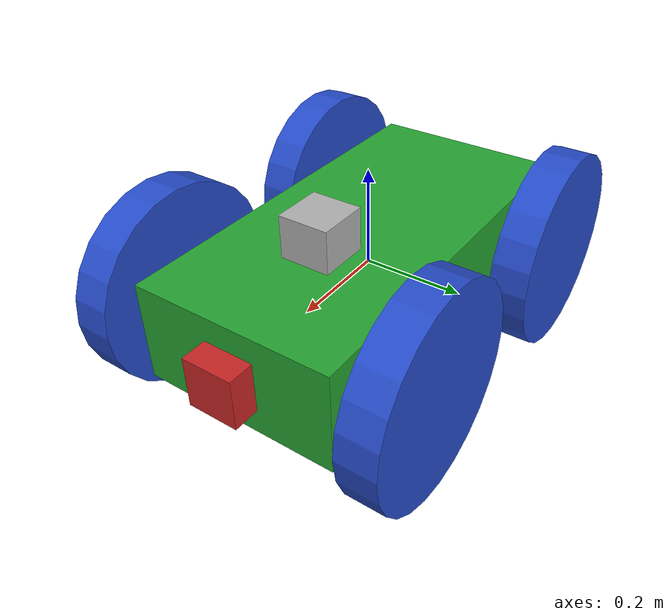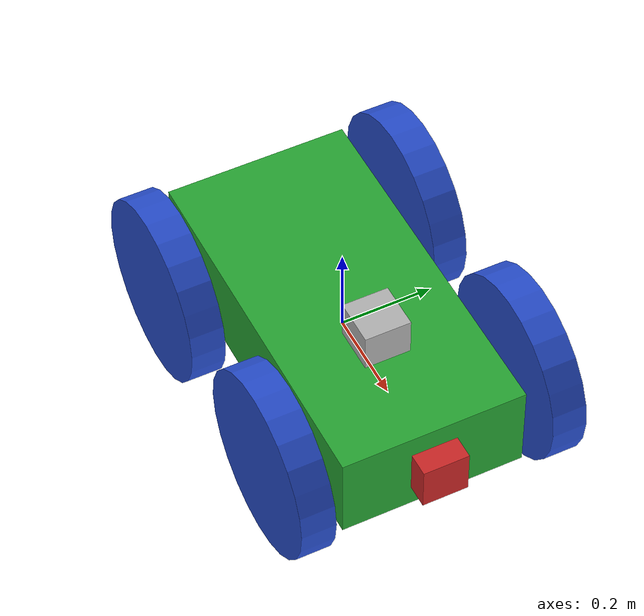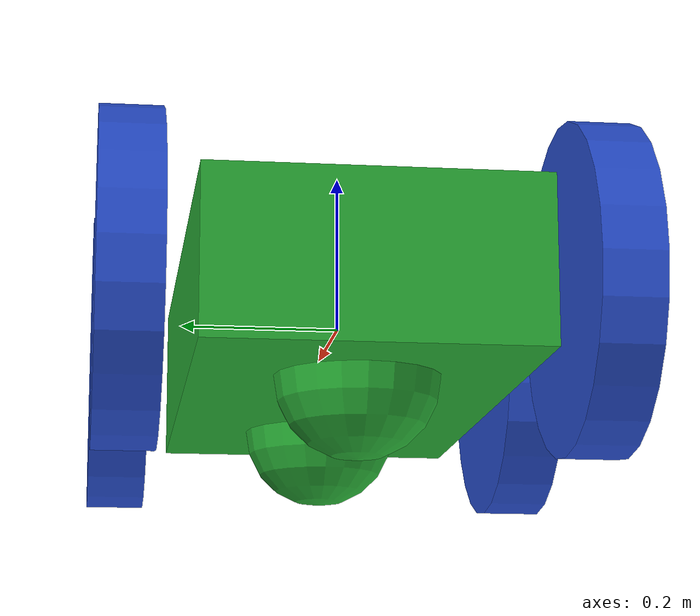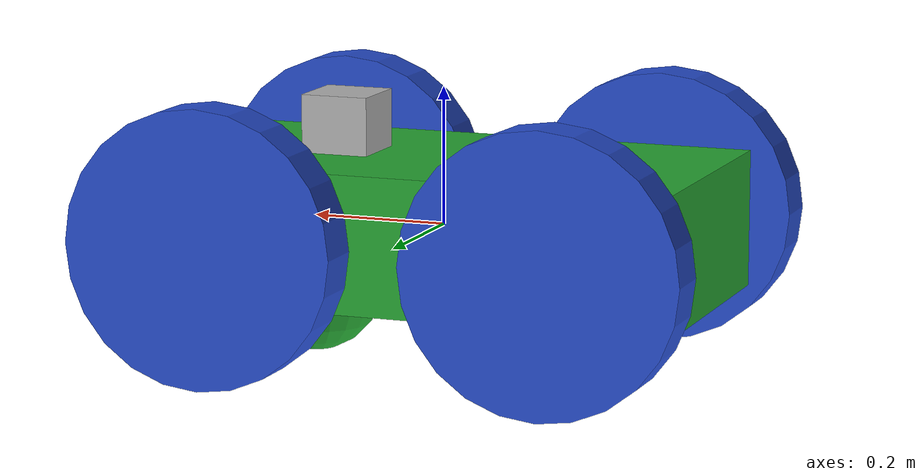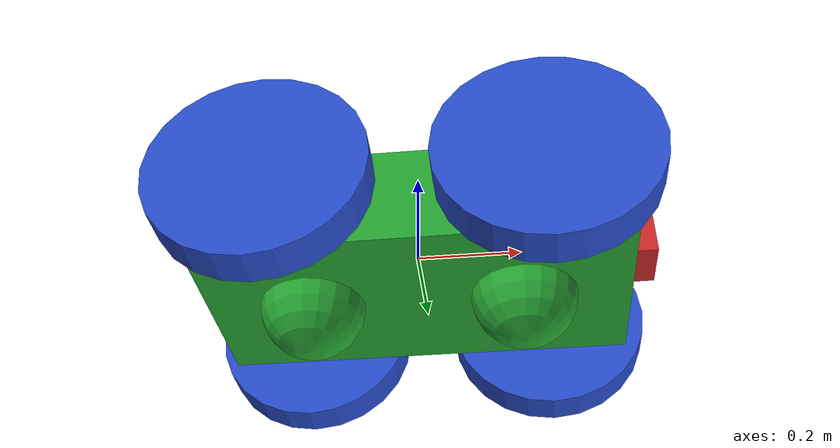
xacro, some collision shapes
<?xml version='1.0'?>

<robot name="my_robot" xmlns:xacro="http://www.ros.org/wiki/xacro">

  <xacro:include filename="$(find my_robot)/urdf/my_robot.gazebo" />
  <link name="robot_footprint"></link>

  <joint name="robot_footprint_joint" type="fixed">
    <origin xyz="0 0 0" rpy="0 0 0" />
    <parent link="robot_footprint"/>
    <child link="chassis" />
  </joint>

  <link name='chassis'>
    <pose>0 0 0.2 0 0 0</pose>

    <inertial>
      <mass value="10.0"/>
      <origin xyz="0.0 0 0" rpy=" 0 0 0"/>
      <inertia
          ixx="0.2" ixy="0" ixz="0"
          iyy="0.2" iyz="0"
          izz="0.2"
      />
    </inertial>

    <collision name='collision'>
      <origin xyz="0 0 0" rpy=" 0 0 0"/>
      <geometry>
        <box size=".8 .4 .2"/>
      </geometry>
    </collision>

    <visual name='chassis_visual'>
      <origin xyz="0 0 0" rpy=" 0 0 0"/>
      <geometry>
        <box size=".8 .4 .2"/>
      </geometry>
    </visual>

  <collision name='back_caster_collision'>
      <origin xyz="-0.2 0 -0.1" rpy=" 0 0 0"/>
      <geometry>
        <sphere radius="0.098"/>
      </geometry>
    </collision>

    <visual name='back_caster_visual'>
      <origin xyz="-0.2 0 -0.1" rpy=" 0 0 0"/>
      <geometry>
        <sphere radius="0.1"/>
      </geometry>
    </visual>

    <collision name='front_caster_collision'>
      <origin xyz="0.2 0 -0.1" rpy=" 0 0 0"/>
      <geometry>
        <sphere radius="0.098"/>
      </geometry>
    </collision>

    <visual name='front_caster_visual'>
      <origin xyz="0.2 0 -0.1" rpy=" 0 0 0"/>
      <geometry>
        <sphere radius="0.1"/>
      </geometry>
    </visual>

  </link>

  <link name='FrontLeft_Wheel'>
    <inertial>
      <mass value="2.0"/>
      <origin xyz="0 0 0" rpy=" 0 1.5707 1.5707"/>
      <inertia
          ixx="0.1" ixy="0" ixz="0"
          iyy="0.1" iyz="0"
          izz="0.1"
      />
    </inertial>

    <collision name='FrontLeft_Wheel_collision'>
      <origin xyz="0 0 0" rpy=" 0 1.5707 1.5707"/>
      <geometry>
        <cylinder radius="0.2" length="0.075"/>
      </geometry>
    </collision>

    <visual name='FrontLeft_Wheel_visual'>
      <origin xyz="0 0 0" rpy=" 0 1.5707 1.5707"/>
      <geometry>
        <cylinder radius="0.2" length="0.075"/>
      </geometry>
    </visual>

  </link>

  <link name='FrontRight_Wheel'>
    <inertial>
      <mass value="2.0"/>
      <origin xyz="0 0 0" rpy=" 0 1.5707 1.5707"/>
      <inertia
          ixx="0.1" ixy="0" ixz="0"
          iyy="0.1" iyz="0"
          izz="0.1"
      />
    </inertial>

    <collision name='FrontRight_Wheel_collision'>
      <origin xyz="0 0 0" rpy=" 0 1.5707 1.5707"/>
      <geometry>
        <cylinder radius="0.2" length="0.075"/>
      </geometry>
    </collision>

    <visual name='FrontRight_Wheel_visual'>
      <origin xyz="0 0 0" rpy=" 0 1.5707 1.5707"/>
      <geometry>
        <cylinder radius="0.2" length="0.075"/>
      </geometry>
    </visual>

  </link>

  <link name='BackLeft_Wheel'>
    <inertial>
      <mass value="2.0"/>
      <origin xyz="0 0 0" rpy=" 0 1.5707 1.5707"/>
      <inertia
          ixx="0.1" ixy="0" ixz="0"
          iyy="0.1" iyz="0"
          izz="0.1"
      />
    </inertial>

    <collision name='BackLeft_Wheel_collision'>
      <origin xyz="0 0 0" rpy=" 0 1.5707 1.5707"/>
      <geometry>
        <cylinder radius="0.2" length="0.075"/>
      </geometry>
    </collision>

    <visual name='BackLeft_Wheel_visual'>
      <origin xyz="0 0 0" rpy=" 0 1.5707 1.5707"/>
      <geometry>
        <cylinder radius="0.2" length="0.075"/>
      </geometry>
    </visual>

  </link>

  <link name='BackRight_Wheel'>
    <inertial>
      <mass value="2.0"/>
      <origin xyz="0 0 0" rpy=" 0 1.5707 1.5707"/>
      <inertia
          ixx="0.1" ixy="0" ixz="0"
          iyy="0.1" iyz="0"
          izz="0.1"
      />
    </inertial>

    <collision name='BackRight_Wheel_collision'>
      <origin xyz="0 0 0" rpy=" 0 1.5707 1.5707"/>
      <geometry>
        <cylinder radius="0.2" length="0.075"/>
      </geometry>
        <color name="Yellow"/>
    </collision>

    <visual name='BackRight_Wheel_visual'>
      <origin xyz="0 0 0" rpy=" 0 1.5707 1.5707"/>
      <geometry>
        <cylinder radius="0.2" length="0.075"/>
      </geometry>

    </visual>

  </link>

  <link name='camera'>
    <inertial>
      <mass value="0.1"/>
      <origin xyz="0 0 0" rpy=" 0 0 0"/>
      <inertia
          ixx="1e-6" ixy="0" ixz="0"
          iyy="1e-6" iyz="0"
          izz="1e-6"
      />
    </inertial>

    <collision name='camera_collision'>
      <origin xyz="0 0 0" rpy=" 0 0 0"/>
      <geometry>
        <box size="0.1 0.1 0.1"/>
      </geometry>
    </collision>

    <visual name='camera_visual'>
      <origin xyz="0 0 0" rpy=" 0 0 0"/>
      <geometry>
        <box size="0.1 0.1 0.1"/>
      </geometry>
    </visual>

  </link>

  <link name='hokuyo'>
    <inertial>
      <mass value="1e-5"/>
      <origin xyz="0 0 0" rpy=" 0 0 0"/>
      <inertia
          ixx="1e-6" ixy="0" ixz="0"
          iyy="1e-6" iyz="0"
          izz="1e-6"
      />
    </inertial>

    <collision name='hokuyo_collision'>
      <origin xyz="0 0 0" rpy=" 0 0 0"/>
      <geometry>
        <box size="0.1 0.1 0.1"/>
      </geometry>
    </collision>

    <visual name='hokuyo_visual'>
      <origin xyz="0 0 0" rpy=" 0 0 0"/>
      <geometry>
        <mesh filename="/home/robond/workspace/catkin_ws/src/my_robot/meshes/hokuyo.dae"/>
      </geometry>
    </visual>

  </link>

  <joint type="continuous" name="FrontLeft_wheel_hinge">
    <origin xyz="0.25 0.275 0" rpy="0 0 0" />
    <parent link="chassis"/>
    <child link="FrontLeft_Wheel"/>
    <axis xyz="0 1 0" rpy="0 0 0"/>
    <limit effort="10000" velocity="1000"/>
    <dynamics damping="1.0" friction="1.0" />
  </joint>

  <joint type="continuous" name="FrontRight_wheel_hinge">
    <origin xyz="0.25 -0.275 0" rpy="0 0 0" />
    <parent link="chassis"/>
    <child link="FrontRight_Wheel"/>
    <axis xyz="0 1 0" rpy="0 0 0"/>
    <limit effort="10000" velocity="1000"/>
    <dynamics damping="1.0" friction="1.0" />
  </joint>

  <joint type="continuous" name="BackLeft_wheel_hinge">
    <origin xyz="-0.25 0.275 0" rpy="0 0 0" />
    <parent link="chassis"/>
    <child link="BackLeft_Wheel"/>
    <axis xyz="0 1 0" rpy="0 0 0"/>
    <limit effort="10000" velocity="1000"/>
    <dynamics damping="1.0" friction="1.0" />
  </joint>

  <joint type="continuous" name="BackRight_wheel_hinge">
    <origin xyz="-0.25 -0.275 0" rpy="0 0 0" />
    <parent link="chassis"/>
    <child link="BackRight_Wheel"/>
    <axis xyz="0 1 0" rpy="0 0 0"/>
    <limit effort="10000" velocity="1000"/>
    <dynamics damping="1.0" friction="1.0" />
  </joint>

  <joint type="fixed" name="camera_joint">
    <origin xyz="0.4 0 0" rpy="0 0 0" />
    <parent link="chassis"/>
    <child link="camera"/>
    <axis xyz="0 1 0" rpy="0 0 0"/>
  </joint>

  <joint type="fixed" name="hokuyo_joint">
    <origin xyz="0.15 0 0.135" rpy="0 0 0" />
    <parent link="chassis"/>
    <child link="hokuyo"/>
    <axis xyz="0 1 0" rpy="0 0 0"/>
  </joint>

  <gazebo reference="chassis">
    <material>Gazebo/Green</material>
  </gazebo>

  <gazebo reference="FrontLeft_Wheel">
    <material>Gazebo/Blue</material>
  </gazebo>

  <gazebo reference="FrontRight_Wheel">
    <material>Gazebo/Blue</material>
  </gazebo>

  <gazebo reference="BackLeft_Wheel">
    <material>Gazebo/Blue</material>
  </gazebo>

  <gazebo reference="BackRight_Wheel">
    <material>Gazebo/Blue</material>
  </gazebo>

  <gazebo reference="camera">
    <material>Gazebo/Red</material>
  </gazebo>

</robot>
